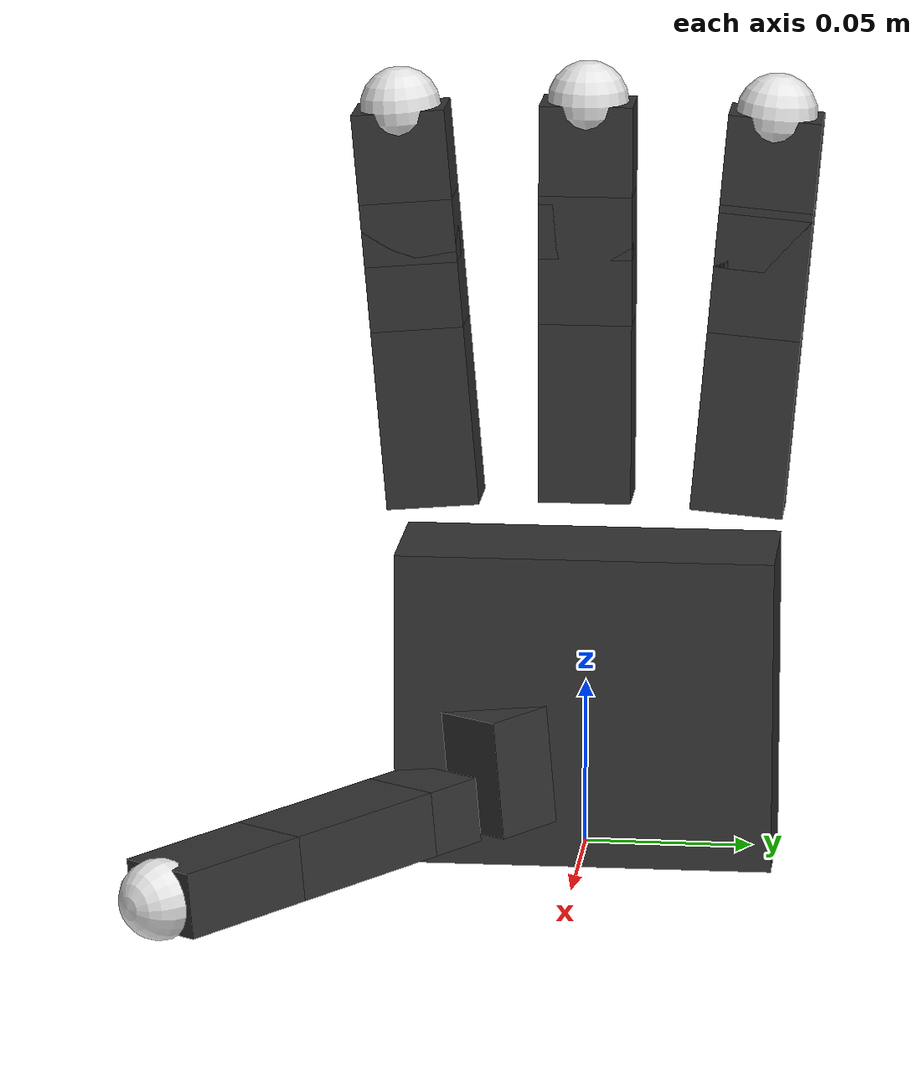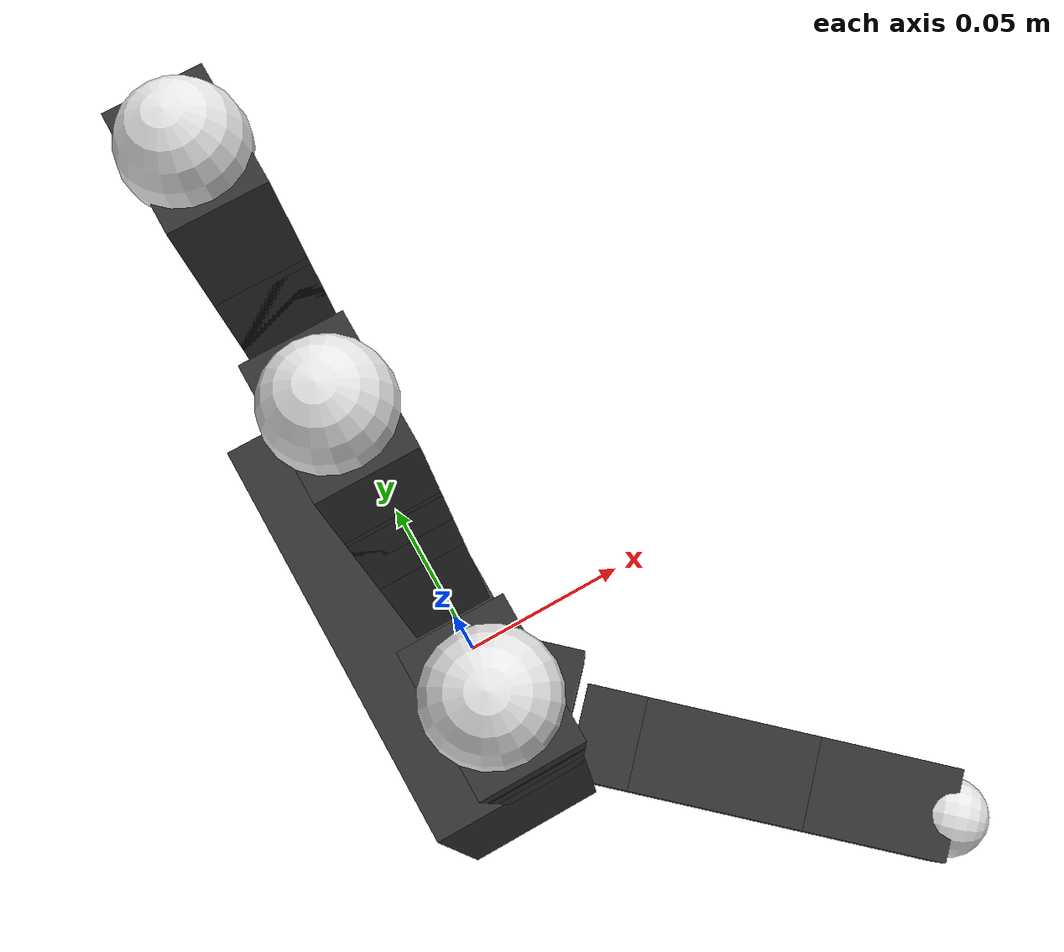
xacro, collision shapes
<?xml version="1.0" encoding="utf-8"?>
<robot xmlns:xacro="http://www.ros.org/wiki/xacro" name="hand">
  <xacro:include filename="$(find allegro_hand_description)/common/utils.xacro" />
  <xacro:include filename="allegro_hand_description_left.xacro"/>
  <xacro:allegro_hand_description_left arm_id="panda" safety_distance="0.03"/>
</robot>

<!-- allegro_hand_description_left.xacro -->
<robot xmlns:xacro="http://www.ros.org/wiki/xacro" name="allegro_hand_left">

<!--
rosrun xacro xacro.py allegro_hand_description_right.urdf.xacro > allegro_hand_description_right.urdf
roslaunch launchers/fuerte/allegro_hand_jgui_right_virtual.launch
-->

<xacro:property name="DEG2RAD" value="0.01745329251" />
<!-- ======================== MOVE PARAMS FOR PANDA========================= -->

<xacro:property name="panda_move" value="0.09" />

<!-- ======================== BASE PARAMS ========================= -->

<xacro:property name="base_link_z" value="0.095" />

<!-- ======================== FINGER PARAMS ======================== -->

<xacro:property name="links_x" value="0.0196" />
<xacro:property name="links_y" value="0.0275" />

<xacro:property name="link0_z" value="0.0164" />
<xacro:property name="link1_z" value="0.0540" />
<xacro:property name="link2_z" value="0.0384" />

<!-- full height from joint to tip. when used,
the radius of the finger tip sphere will be subtracted
and one fixed link will be added for the tip. -->
<xacro:property name="link3_z" value="0.0387" />
<xacro:property name="fingerTip_r" value="0.0120" />

<xacro:property name="offset_origin_x_const" value="0" />
<xacro:property name="offset_origin_y_const" value="0.0435" />
<xacro:property name="offset_origin_z_const" value="-0.001542" />
<xacro:property name="offset_origin_z_mid_const" value="0.0007" />

<!-- ========================= THUMB PARAMS ========================= -->

<xacro:property name="link0_t_x" value="0.0358" />
<xacro:property name="link0_t_y" value="0.0340" />
<xacro:property name="link0_t_z" value="0.0455" />

<xacro:property name="link1_t_z" value="0.0177" />
<xacro:property name="link2_t_z" value="0.0514" />
<xacro:property name="link3_t_z" value="0.0543" />

<!-- ========================= LIMITS ========================= -->

<xacro:property name="joint_safety_margin" value="0.1" />
<xacro:property name="limit_0_up" value="0.57" />
<xacro:property name="limit_0_low" value="-0.57" />
<xacro:property name="limit_1_up" value="1.71" />
<xacro:property name="limit_1_low" value="-0.296" />
<xacro:property name="limit_2_up" value="1.809" />
<xacro:property name="limit_2_low" value="-0.274" />
<xacro:property name="limit_3_up" value="1.718" />
<xacro:property name="limit_3_low" value=" -0.327" />

<xacro:property name="limit_0_t_up" value="1.496" />
<xacro:property name="limit_0_t_low" value="0.363" />
<xacro:property name="limit_1_t_up" value="1.263" />
<xacro:property name="limit_1_t_low" value="-0.205" />
<xacro:property name="limit_2_t_up" value="1.744" />
<xacro:property name="limit_2_t_low" value="-0.289" />
<xacro:property name="limit_3_t_up" value="1.819" />
<xacro:property name="limit_3_t_low" value="-0.262" />

<xacro:macro name="allegro_hand_description_left" params="connected_to:='' arm_id:='panda' rpy:='0 0 0' xyz:='0 0 0' tcp_xyz:='0 0 0.1034' tcp_rpy:='0 0 0' safety_distance:=0 gazebo:=false description_pkg:=allegro_hand_description">

<!-- BASE -->
    <xacro:unless value="${connected_to == ''}">
      <joint name="allegro_hand_joint" type="fixed">
        <parent link="${connected_to}" />
        <child link="base_link" />
        <origin xyz="${xyz}" rpy="${rpy}" />
      </joint>
    </xacro:unless>
<link name="base_link">
	<visual>
    	<geometry>
      		<mesh filename="package://allegro_hand_description/meshes/base_link_left.STL" />
      	</geometry>

      	<!-- LEFT -->
      	<origin rpy="${-90*DEG2RAD} 0 0" xyz="0 0 ${panda_move} "/>
      	<!-- RIGHT -->

      	<material name="black">
        	<color rgba="0.2 0.2 0.2 1"/>
      	</material>
	</visual>

    <collision>
	    <origin rpy="0 0 0" xyz="-0.009300 0 ${-base_link_z/2+panda_move}"/>
    	<geometry>
        	<box size="0.0408 0.1130 ${base_link_z}"/>
      	</geometry>
    </collision>

  </link>

<!-- THUMB MACRO -->
<xacro:macro name="thumb_left" params="finger_num offset_origin_x offset_origin_y offset_origin_z finger_angle_r finger_angle_p finger_angle_y">

<!-- [LINK 12] -->
	<link name="link_${finger_num*4+0}">

    	<visual>
			<geometry>
        		<!-- RIGHT -->
      			<!-- LEFT -->
      			<mesh filename="package://allegro_hand_description/meshes/link_12.0_left.STL" />
      		</geometry>
      		<material name="black">
        		<color rgba=".2 .2 .2 1"/>
      		</material>
      		<origin rpy="${180*DEG2RAD} 0 0" xyz="0 0 ${.029/2}"/>
    	</visual>

    	<collision>
      		<geometry>
        		<box size="${link0_t_x} ${link0_t_y} ${link0_t_z}"/>
      		</geometry>

  			<!-- RIGHT -->
     		<!-- LEFT -->
     		<origin rpy="0 0 0" xyz="${-0.0358/2+0.0} ${-.018/2} ${.029/2}"/>
    	</collision>

	</link>

	<joint name="joint_${finger_num*4+0}" type="revolute">

    	<axis xyz="+1 0 0"/>
    	<limit effort="0" velocity="0" lower="${limit_0_t_low-joint_safety_margin}" upper="${limit_0_t_up-joint_safety_margin}" />
    	<parent link="base_link"/>
    	<child link="link_${finger_num*4+0}"/>
    	<origin rpy="${finger_angle_r} ${finger_angle_p} ${finger_angle_y}" xyz="${offset_origin_x} ${offset_origin_y} ${offset_origin_z+panda_move}"/>

	</joint>

<!-- [LINK 13] -->
	<link name="link_${finger_num*4+1}">
		<visual>
			<geometry>
		    	<mesh filename="package://allegro_hand_description/meshes/link_13.0.STL" />
		  	</geometry>

		  	<material name="black">
		  		<color rgba=".2 .2 .2 1"/>
		 	</material>
		</visual>

		<collision>
			<geometry>
		    	<box size="${links_x} ${links_y} ${link1_t_z}"/>
		  	</geometry>

		  	<origin rpy="0 0 0" xyz="0 0 ${link1_t_z/2}"/>
		</collision>
	</link>

  	<joint name="joint_${finger_num*4+1}" type="revolute">

    	<axis xyz="0 0 -1"/>
     	<limit effort="0" velocity="0" lower="${limit_1_t_low+joint_safety_margin}" upper="${limit_1_t_up-joint_safety_margin}" />
    	<parent link="link_${finger_num*4+0}"/>
    	<child link="link_${finger_num*4+1}"/>

		<!-- RIGHT -->
    	<!-- LEFT -->
    	<origin xyz="-0.027 -0.005 0.0399"/>

  	</joint>

<!-- [LINK 14] -->

	<link name="link_${finger_num*4+2}">
		<visual>
			<geometry>
		  		<mesh filename="package://allegro_hand_description/meshes/link_14.0.STL" />
			</geometry>
			<material name="black">
		  	</material>
		</visual>

		<collision>
			<geometry>
		    	<box size="${links_x} ${links_y} ${link2_t_z}"/>
		  	</geometry>
		  	<origin rpy="0 0 0" xyz="0 0 ${link2_t_z/2}"/>
		</collision>

	</link>

  <joint name="joint_${finger_num*4+2}" type="revolute">

		<axis xyz="0 1 0"/>
		<limit effort="0" velocity="0" lower="${limit_2_t_low+joint_safety_margin}" upper="${limit_2_t_up-joint_safety_margin}" />
		<parent link="link_${finger_num*4+1}"/>
		<child link="link_${finger_num*4+2}"/>
		<origin xyz="0 0 ${link1_t_z}"/>

  </joint>

<!-- [LINK 15] -->

	<link name="link_${finger_num*4+3}">

    	<visual>
      		<geometry>
      				<mesh filename="package://allegro_hand_description/meshes/link_15.0.STL" />
        	</geometry>

    	<material name="black">
    	</material>
    	</visual>

    	<collision>
			<geometry>
		    	<box size="${links_x} ${links_y} ${link3_t_z-fingerTip_r}"/>
		  	</geometry>
		  	<origin rpy="0 0 0" xyz="0 0 ${(link3_t_z-fingerTip_r)/2}"/>
    	</collision>

	</link>

	<joint name="joint_${finger_num*4+3}" type="revolute">
    	<axis xyz="0 1 0"/>
     	<limit effort="0" velocity="0" lower="${limit_3_t_low+joint_safety_margin}" upper="${limit_3_t_up-joint_safety_margin}" />
    	<parent link="link_${finger_num*4+2}"/>
    	<child link="link_${finger_num*4+3}"/>
    	<origin xyz="0 0 ${link2_t_z}"/>
	</joint>

<!-- [FINGER TIP] -->

	<link name="link_${finger_num*4+3}_tip">
		<visual>
			<geometry>
		  		<mesh filename="package://allegro_hand_description/meshes/link_15.0_tip.STL" />
		  	</geometry>

		  	<material name="white">
		  		<color rgba=".9 .9 .9 1"/>
		  	</material>
    	</visual>

    	<collision>
      		<geometry>
        		<sphere radius="${fingerTip_r}"/>
      		</geometry>
      		<origin rpy="0 0 0" xyz="0 0 0"/>
    	</collision>

	</link>

  	<joint name="joint_${finger_num*4+3}_tip" type="fixed">
    	<parent link="link_${finger_num*4+3}"/>
    	<child link="link_${finger_num*4+3}_tip"/>
    	<origin rpy="0 0 0" xyz="0 0 ${link3_t_z-fingerTip_r}"/>
  	</joint>

</xacro:macro>

<!-- END THUMB MACRO -->

<!-- THREE FINGER MACRO -->
<xacro:macro name="finger" params="finger_num offset_origin_x offset_origin_y offset_origin_z finger_angle_r">

<!-- [LINK 0, 4, 8] -->

	<link name="link_${finger_num*4+0}">
    	<visual>
    		<geometry>
      			<mesh filename="package://allegro_hand_description/meshes/link_0.0.STL" />
      		</geometry>
      		<material name="black"/>
    	</visual>

    	<collision>
      		<geometry>
        		<box size="${links_x} ${links_y} ${link0_z}"/>
      		</geometry>
      		<origin rpy="0 0 0" xyz="0 0 ${link0_z/2+panda_move}"/>
    	</collision>

	</link>

  	<joint name="joint_${finger_num*4+0}" type="revolute">
    	<axis xyz="0 0 1"/>
    	<limit effort="0" velocity="0" lower="${limit_0_low+joint_safety_margin}" upper="${limit_0_up-joint_safety_margin}" />
    	<parent link="base_link"/>
    	<child link="link_${finger_num*4+0}"/>
    	<origin rpy="${finger_angle_r} 0 0" xyz="${offset_origin_x} ${offset_origin_y} ${offset_origin_z+panda_move}"/>
  	</joint>

<!-- [LINK 1, 5, 9] -->

	<link name="link_${finger_num*4+1}">
    	<visual>
      		<geometry>
      			<mesh filename="package://allegro_hand_description/meshes/link_1.0.STL" />
      		</geometry>
      		<material name="black"/>
    	</visual>

    	<collision>
      		<geometry>
        		<box size="${links_x} ${links_y} ${link1_z}"/>
      		</geometry>
	  		<origin rpy="0 0 0" xyz="0 0 ${link1_z/2}"/>
    	</collision>

  	</link>

  	<joint name="joint_${finger_num*4+1}" type="revolute">
  		<limit effort="0" velocity="0" lower="${limit_1_low+joint_safety_margin}" upper="${limit_1_up-joint_safety_margin}" />
    	<axis xyz="0 1 0"/>
    	<parent link="link_${finger_num*4+0}"/>
    	<child link="link_${finger_num*4+1}"/>
    	<origin xyz="0 0 ${link0_z}"/>
  	</joint>

<!-- [LINK 2, 6, 10]-->

	<link name="link_${finger_num*4+2}">
    	<visual>
      		<geometry>
      			<mesh filename="package://allegro_hand_description/meshes/link_2.0.STL" />
      		</geometry>
      		<material name="black"/>
    	</visual>

    	<collision>
      		<geometry>
        		<box size="${links_x} ${links_y} ${link2_z}"/>
      		</geometry>
      		<origin rpy="0 0 0" xyz="0 0 ${link2_z/2}"/>
    	</collision>

  	</link>

  	<joint name="joint_${finger_num*4+2}" type="revolute">
    	<axis xyz="0 1 0"/>
    	<limit effort="0" velocity="0" lower="${limit_2_low+joint_safety_margin}" upper="${limit_2_up-joint_safety_margin}" />
    	<parent link="link_${finger_num*4+1}"/>
    	<child link="link_${finger_num*4+2}"/>
    	<origin xyz="0 0 ${link1_z}"/>
  	</joint>

<!-- [LINK 3, 7, 11] -->

	<link name="link_${finger_num*4+3}">
    	<visual>
      		<geometry>
      			<mesh filename="package://allegro_hand_description/meshes/link_3.0.STL" />
        	</geometry>
      		<material name="black"/>
    	</visual>

    	<collision>
      		<geometry>
        		<box size="${links_x} ${links_y} ${link3_z-fingerTip_r}"/>
      		</geometry>
      		<origin rpy="0 0 0" xyz="0 0 ${(link3_z-fingerTip_r)/2}"/>
    	</collision>
  	</link>

  	<joint name="joint_${finger_num*4+3}" type="revolute">
    	<axis xyz="0 1 0"/>
    	<limit effort="0" velocity="0" lower="${limit_3_low+joint_safety_margin}" upper="${limit_3_up-joint_safety_margin}" />
    	<parent link="link_${finger_num*4+2}"/>
    	<child link="link_${finger_num*4+3}"/>
    	<origin xyz="0 0 ${link2_z}"/>
  	</joint>

<!-- [FINGER TIP] -->

	<link name="link_${finger_num*4+3}_tip">
   		<visual>
      		<geometry>
      			<mesh filename="package://allegro_hand_description/meshes/link_3.0_tip.STL" />
        	</geometry>
		  	<material name="white">
        		<color rgba=".9 .9 .9 1"/>
      		</material>
    	</visual>

     	<collision>
      		<geometry>
      			<sphere radius="${fingerTip_r}"/>
      		</geometry>
    	</collision>

  		</link>
  	 		<joint name="joint_${finger_num*4+3}_tip" type="fixed">
    		<parent link="link_${finger_num*4+3}"/>
    		<child link="link_${finger_num*4+3}_tip"/>
    		<origin rpy="0 0 0" xyz="0 0 ${link3_z-fingerTip_r}"/>
  		</joint>

</xacro:macro>
<!-- [[END]] THREE FINGER MACRO -->
<!-- FINGERS -->

<!-- RIGHT HAND due to which finger is number 0 -->
<!-- for LEFT HAND switch the sign of the **offset_origin_y** and **finger_angle_r** parameters-->
<xacro:finger
	finger_num=			"2"
	offset_origin_x=	"${offset_origin_x_const}"
	offset_origin_y=	"${offset_origin_y_const}"
	offset_origin_z=	"${offset_origin_z_const}"
	finger_angle_r=		"-${5.0*DEG2RAD}"
/>

<xacro:finger
	finger_num=			"1"
	offset_origin_x=	"${offset_origin_x_const}"
	offset_origin_y=	"0"
	offset_origin_z=	"${offset_origin_z_mid_const}"
	finger_angle_r=		"0.0"
/>

<xacro:finger
	finger_num=			"0"
	offset_origin_x=	"${offset_origin_x_const}"
	offset_origin_y=	"-${offset_origin_y_const}"
	offset_origin_z=	"${offset_origin_z_const}"
	finger_angle_r=		"${5.0*DEG2RAD}"
/>

<!-- THUMB -->

	<!--
	finger_angle_r=		"${90*DEG2RAD}"
	finger_angle_p=		"-${100*DEG2RAD}"
	finger_angle_y=		"${0*DEG2RAD}"
	-->
<xacro:thumb_left
	finger_num=			"3"
	offset_origin_x=	"-0.0182"
	offset_origin_y=	"-0.019333"
	offset_origin_z=	"-0.045987"

	finger_angle_r=		"0"
	finger_angle_p=		"-${95*DEG2RAD}"
	finger_angle_y=		"${90*DEG2RAD}"
/>

</xacro:macro>
</robot>
